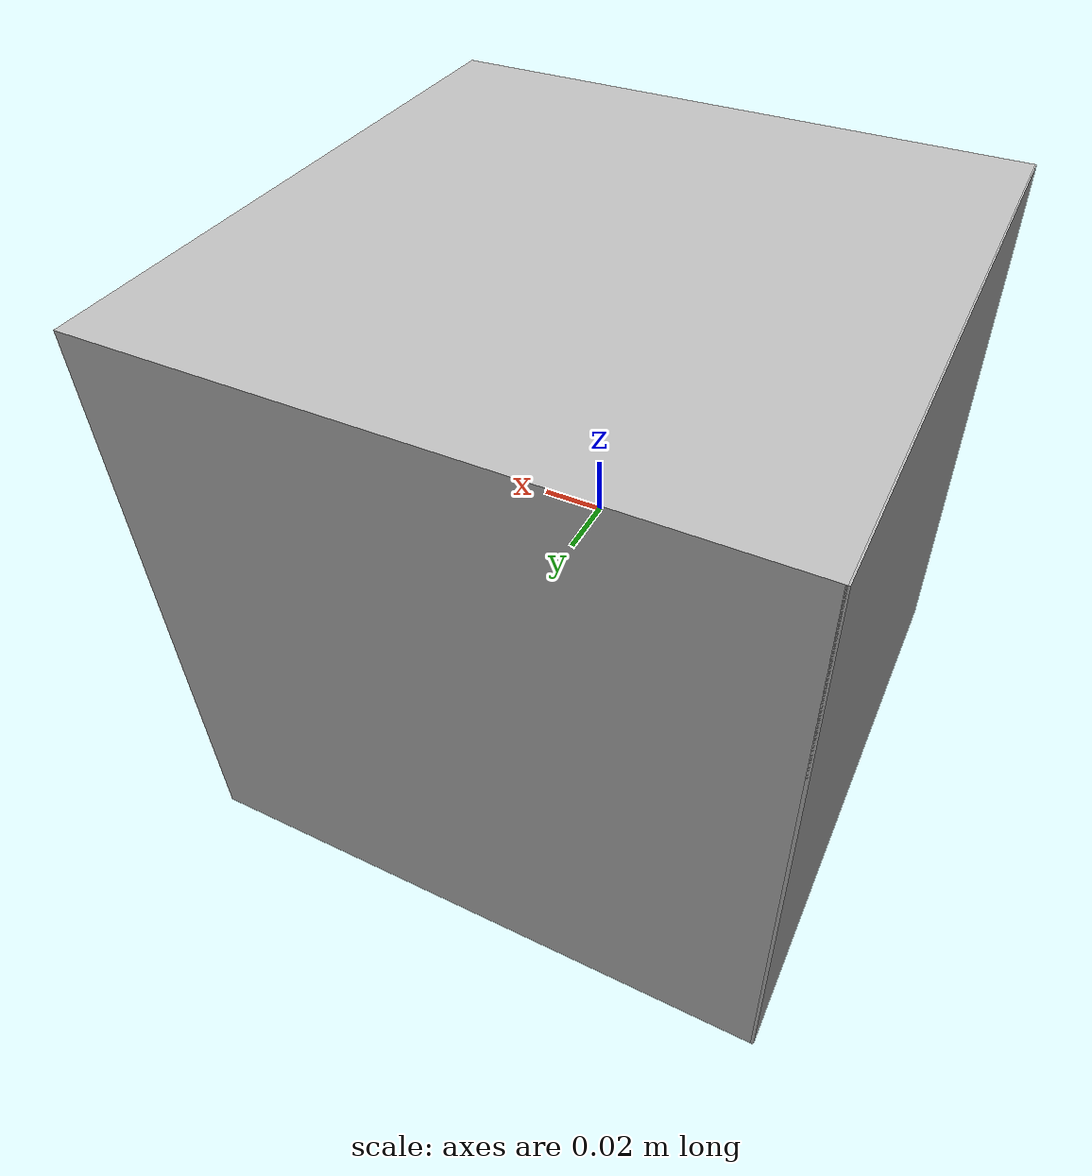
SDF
<?xml version="1.0" ?>
<sdf version="1.5">
  <model name="tag_box">
    <include>
      <uri>model://tag</uri>
      <pose>-0.10 0 0 0 0 0</pose>
    </include>
    <link name="box">
      <pose>0 0 0 0 0 0</pose>
      <collision name="collision">
        <geometry>
          <box>
            <size> 0.2 0.2 0.2</size>
          </box>
        </geometry>
      </collision>
      <visual name="visual">
        <cast_shadows>false</cast_shadows>
        <geometry>
          <box>
            <size> 0.2 0.2 0.2</size>
          </box>
        </geometry>
        <material>
          <emissive>1 1 1 0</emissive>
        </material>
      </visual>
    </link>
    <joint name="joint" type="fixed">
      <pose>0 0 0 0 0 0 0</pose>
      <parent>box</parent>
      <child>tag::link</child>
    </joint>
    <plugin name="tag_box_plugin" filename="libtag_box_plugin.so">

    </plugin>
  </model>
</sdf>

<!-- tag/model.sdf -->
<sdf version="1.5">
  <model name="tag">
    <link name="link">
      <pose>0 0 0 0 0 0</pose>
      <collision name="collision">
        <geometry>
          <box>
            <size> 0.001 0.2 0.2</size>
          </box>
        </geometry>
      </collision>
      <visual name="visual">
        <cast_shadows>false</cast_shadows>
        <geometry>
          <box>
            <size> 0.001 0.2 0.2</size>
          </box>
        </geometry>
        <material>
          <emissive>1 1 1 1</emissive>
          <script>
            <uri>model://tag/materials/scripts</uri>
            <uri>model://tag/materials/textures</uri>
            <name>Tag</name>
          </script>
        </material>
      </visual>
    </link>
  </model>
</sdf>
